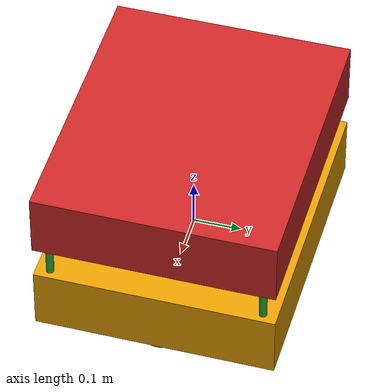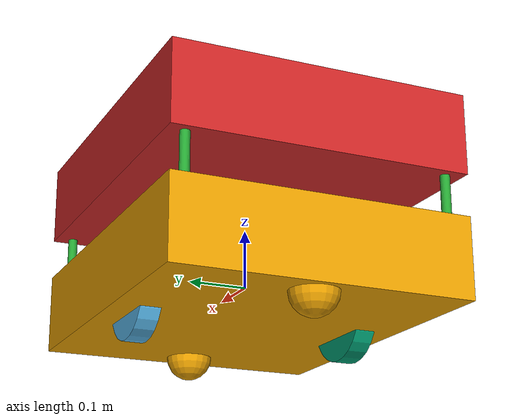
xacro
<?xml version='1.0'?>

<!-- This is a URDF description file of a mobile robot, written by Muhammad Asem, m7mad3asem@gmail.com
It models: 1-Chassis with Caster Wheel 2-Left wheel 3-right Wheel  4-Kinect /-->

<robot name="myrobot" xmlns:xacro="http://www.ros.org/wiki/xacro">

<!-- +++++++++++++++++++++++Robot Definition+++++++++++++++++++++++++ /-->

<!--Chassis & Caster Link /-->

 <link name='chassis'>

   <visual name='chassis_visual'>

      <origin xyz="0 0 0" rpy=" 0 0 0"/>

      <geometry>
        <box size=".6 .5 .136"/>
      </geometry>

    </visual>

   <inertial>

      <mass value="10.0"/>
      <origin xyz="0 0 0" rpy=" 0 0 0"/>
      <inertia
          ixx="0.5" ixy="0" ixz="0"
          iyy="1.0" iyz="0"
          izz="0.1"
      />

   </inertial>

   <collision name='collision'>
      <geometry>
        <box size=".6 .5 .136"/>
      </geometry>
   </collision>

 <collision name='caster_collision'>
    <origin xyz="-0.25 0 -0.068" rpy=" 0 0 0"/>

    <geometry>
        <sphere radius="0.0402"/>
    </geometry>

    <surface>

        <friction>
          <ode>
            <mu>0</mu>
            <mu2>0</mu2>
            <slip1>1.0</slip1>
            <slip2>1.0</slip2>
          </ode>
        </friction>

     </surface>

 </collision>

<visual name='caster_visual'>

     <origin xyz="-0.25 0 -0.068" rpy=" 0 0 0"/>

     <geometry>
      <sphere radius="0.0402"/>
     </geometry>

</visual>

 <collision name='caster2_collision'>
    <origin xyz="0.25 0 -0.068" rpy=" 0 0 0"/>

    <geometry>
        <sphere radius="0.0402"/>
    </geometry>

    <surface>

        <friction>
          <ode>
            <mu>0</mu>
            <mu2>0</mu2>
            <slip1>1.0</slip1>
            <slip2>1.0</slip2>
          </ode>
        </friction>

     </surface>

 </collision>

<visual name='caster2_visual'>

     <origin xyz="0.25 0 -0.068" rpy=" 0 0 0"/>

     <geometry>
      <sphere radius="0.0402"/>
     </geometry>

</visual>

</link>

<!-- ++++++++++++++++Left wheel+++++++++++++++++++++++++++++++ /-->

<!--left wheel Joint /-->

  <joint type="continuous" name="left_wheel_hinge">
    <origin xyz="0 0.1895 -0.0317" rpy="0 0 0"/>
    <child link="left_wheel"/>
    <parent link="chassis"/>
    <axis xyz="0 1 0" rpy="0 0 0"/>
    <limit effort="100" velocity="100"/>
    <joint_properties damping="0.0" friction="0.0"/>
  </joint>

<!--left wheel Link /-->

 <link name="left_wheel">

    <visual name="left_wheel_visual">
      <origin xyz="0 0 0" rpy="0 1.5707 1.5707"/>
      <geometry>
        <cylinder radius="0.0765" length="0.035"/>
      </geometry>
    </visual>

    <collision name="collision">
      <origin xyz="0 0 0" rpy="0 1.5707 1.5707"/>
      <geometry>
        <cylinder radius="0.0765" length="0.035"/>
      </geometry>
    </collision>

    <inertial>
      <origin xyz="0 0 0" rpy="0 1.5707 1.5707"/>
      <mass value="5"/>
      <cylinder_inertia m="5" r="0.0765" h="0.035"/>
      <inertia
        ixx="1.0" ixy="0.0" ixz="0.0"
        iyy="1.0" iyz="0.0"
        izz="1.0"/>
    </inertial>

 </link>

<!-- +++++++++++++++++++ Right Wheel +++++++++++++++++++++++++++++++++ /-->

<!--Right wheel joint/-->
  <joint type="continuous" name="right_wheel_hinge">

    <origin xyz="0 -0.1895 -0.0317" rpy="0 0 0"/>

    <child link="right_wheel"/>
    <parent link="chassis"/>

    <axis xyz="0 1 0" rpy="0 0 0"/>

    <limit effort="100" velocity="100"/>

    <joint_properties damping="0.0" friction="0.0"/>

  </joint>

<!--Right Wheel link /-->

  <link name="right_wheel">

    <visual name="right_wheel_visual">

      <origin xyz="0 0 0" rpy="0 1.5707 1.5707"/>

      <geometry>
        <cylinder radius="0.0765" length="0.035"/>
      </geometry>

    </visual>

    <collision name="collision">

      <origin xyz="0 0 0" rpy="0 1.5707 1.5707"/>

      <geometry>
        <cylinder radius="0.0765" length="0.035"/>
      </geometry>

    </collision>

    <inertial>

      <origin xyz="0 0 0" rpy="0 1.5707 1.5707"/>
      <mass value="5"/>
      <cylinder_inertia m="5" r="0.0765" h="0.035"/>

      <inertia
        ixx="1.0" ixy="0.0" ixz="0.0"
        iyy="1.0" iyz="0.0"
        izz="1.0"/>
      </inertial>

  </link>

  <!-- ++++++++++++++++++  Upper level  +++++++++++++++++++++++++++++ /-->
<!--upper level joint /-->

<joint name="upper_level_joint" type="fixed">

    <origin xyz="0 0 0.206" rpy="0 0 0"/>

    <parent link="chassis"/>
    <child link="upper_level"/>

</joint>

<!--upper level  Link /-->

<link name="upper_level">
	<visual>
            <geometry>
        	<box size=".6 .5 .136"/>
      	    </geometry>
            <material name="red"/>
        </visual>
        <inertial>

      <mass value="10.0"/>
      <origin xyz="0 0 0" rpy=" 0 0 0"/>
      <inertia
          ixx="0.5" ixy="0" ixz="0"
          iyy="1.0" iyz="0"
          izz="0.1"
      />

   </inertial>

   <collision name='collision'>
      <geometry>
        <box size=".6 .5 .136"/>
      </geometry>
   </collision>

</link>

<!-- ++++++++++++++++++  rplidar  +++++++++++++++++++++++++++++ /-->
<!--rplidar joint /-->

<joint name="rplidar_joint" type="fixed">

    <origin xyz="0.065 0 0.098" rpy="0 0 0"/>

    <parent link="chassis"/>
    <child link="rplidar_link"/>

</joint>

<!--rplidar  Link /-->

<link name="rplidar_link">
	<visual>
            <geometry>
                <cylinder radius="0.05" length="0.06"/>
            </geometry>
            <material name="red"/>
        </visual>
        <collision>
            <geometry>
                <cylinder radius="0.05" length="0.06"/>
            </geometry>
        </collision>
        <xacro:inertial_cylinder mass="0.1" length="0.06" radius="0.05">
            <origin xyz="0 0 0" rpy="0 0 0"/>
        </xacro:inertial_cylinder>
</link>

<!-- ++++++++++++++++++Four Supports++++++++++++++++++++ /-->
<joint name="support1_joint" type="fixed">

    <origin xyz="0.28 0.22 0.103" rpy="0 0 0"/>

    <parent link="chassis"/>
    <child link="support1_link"/>

</joint>

<link name="support1_link">
	<visual>
            <geometry>
                <cylinder radius="0.008" length="0.07"/>
            </geometry>
            <material name="green"/>
        </visual>
        <collision>
            <geometry>
                <cylinder radius="0.008" length="0.07"/>
            </geometry>
        </collision>
        <xacro:inertial_cylinder mass="0.1" length="0.07" radius="0.008">
            <origin xyz="0 0 0" rpy="0 0 0"/>
        </xacro:inertial_cylinder>
</link>
<joint name="support2_joint" type="fixed">

    <origin xyz="-0.28 0.22 0.103" rpy="0 0 0"/>

    <parent link="chassis"/>
    <child link="support2_link"/>

</joint>

<link name="support2_link">
	<visual>
            <geometry>
                <cylinder radius="0.008" length="0.07"/>
            </geometry>
            <material name="green"/>
        </visual>
        <collision>
            <geometry>
                <cylinder radius="0.008" length="0.07"/>
            </geometry>
        </collision>
        <xacro:inertial_cylinder mass="0.1" length="0.07" radius="0.008">
            <origin xyz="0 0 0" rpy="0 0 0"/>
        </xacro:inertial_cylinder>
</link>

<joint name="support3_joint" type="fixed">

    <origin xyz="-0.28 -0.22 0.103" rpy="0 0 0"/>

    <parent link="chassis"/>
    <child link="support3_link"/>

</joint>

<link name="support3_link">
	<visual>
            <geometry>
                <cylinder radius="0.008" length="0.07"/>
            </geometry>
            <material name="green"/>
        </visual>
        <collision>
            <geometry>
                <cylinder radius="0.008" length="0.07"/>
            </geometry>
        </collision>
        <xacro:inertial_cylinder mass="0.1" length="0.07" radius="0.008">
            <origin xyz="0 0 0" rpy="0 0 0"/>
        </xacro:inertial_cylinder>
</link>
<joint name="support4_joint" type="fixed">

    <origin xyz="0.28 -0.22 0.103" rpy="0 0 0"/>

    <parent link="chassis"/>
    <child link="support4_link"/>

</joint>

<link name="support4_link">
	<visual>
            <geometry>
                <cylinder radius="0.008" length="0.07"/>
            </geometry>
            <material name="green"/>
        </visual>
        <collision>
            <geometry>
                <cylinder radius="0.008" length="0.07"/>
            </geometry>
        </collision>
        <xacro:inertial_cylinder mass="0.1" length="0.07" radius="0.008">
            <origin xyz="0 0 0" rpy="0 0 0"/>
        </xacro:inertial_cylinder>
</link>

</robot>
